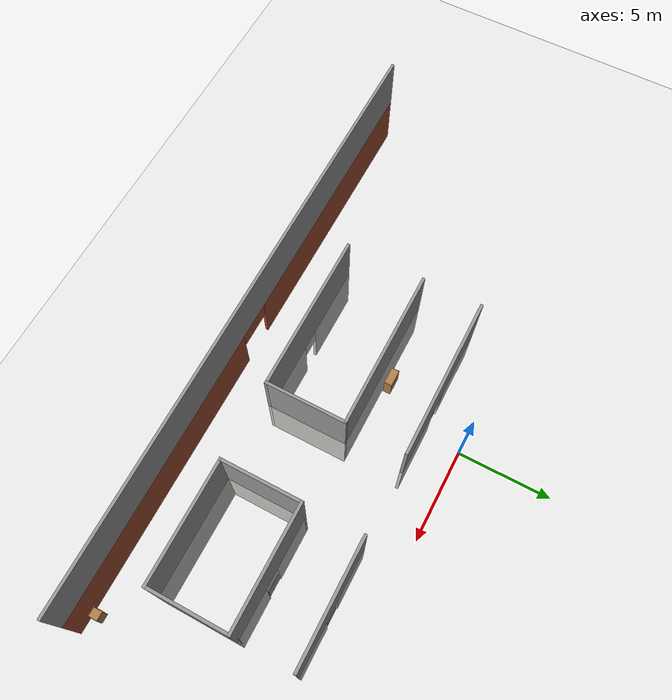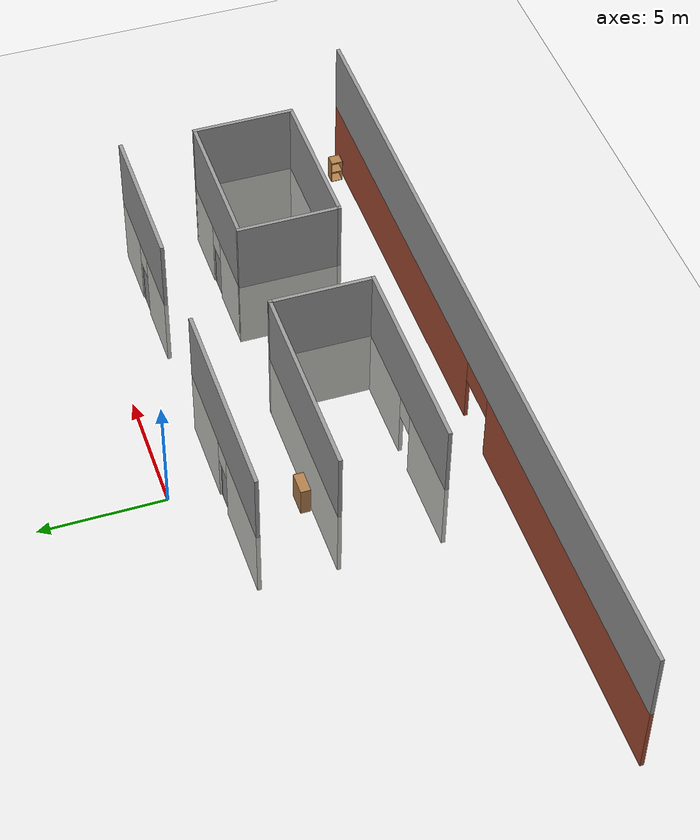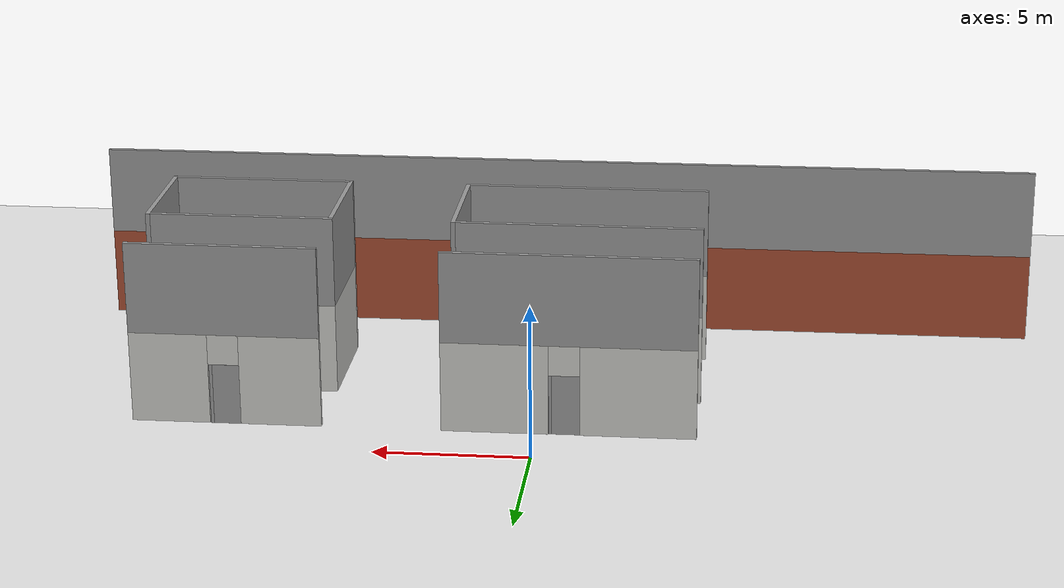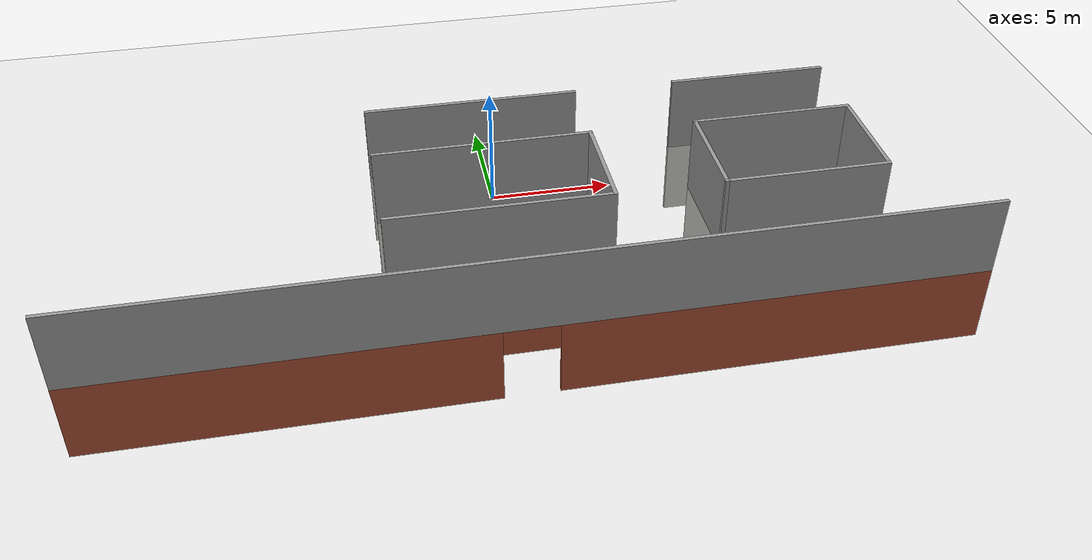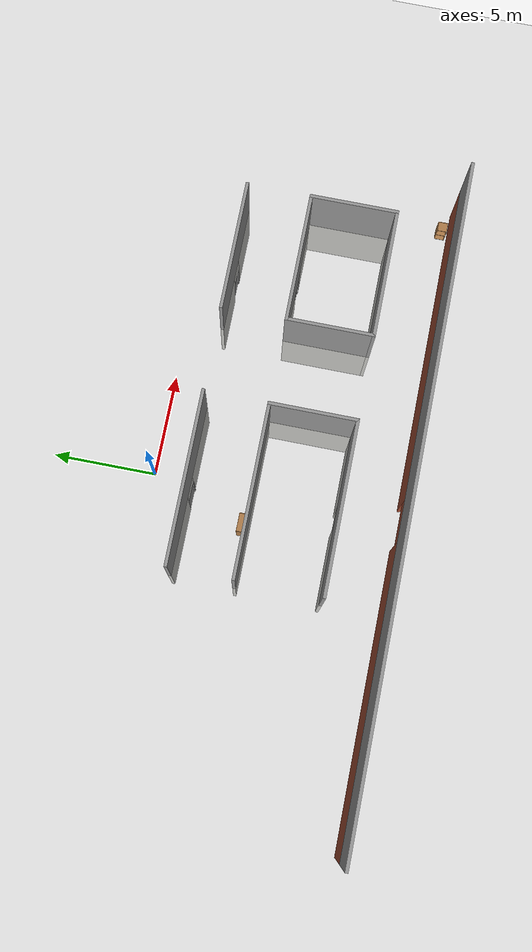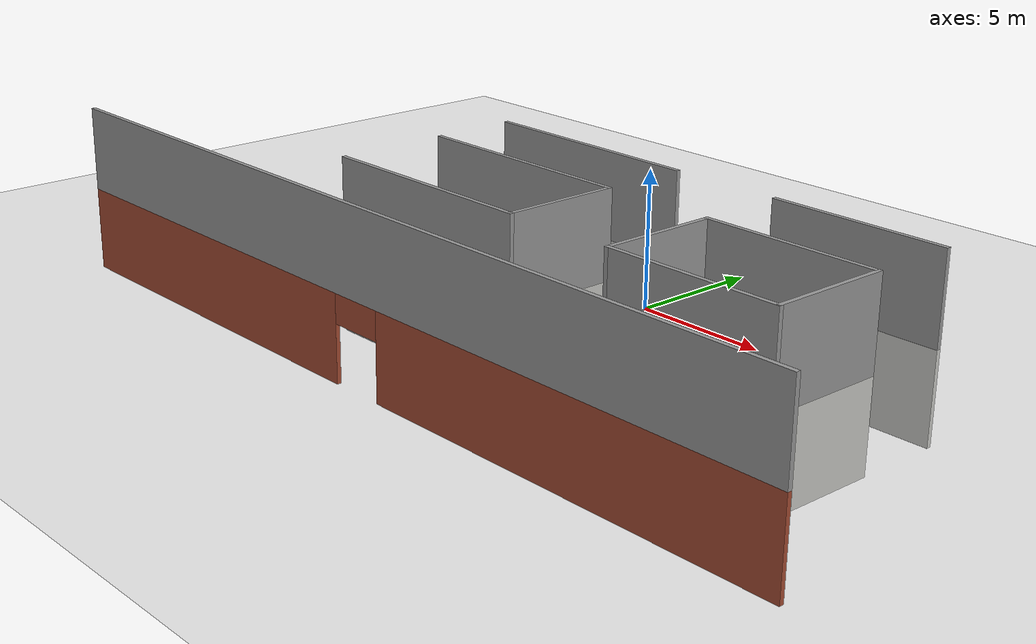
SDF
<sdf version="1.6">
 <world name="default">
  <model name="ground_plane">
   <static>1</static>
   <link name="link">
    <collision name="collision">
     <geometry><plane><normal>0 0 1</normal><size>100 100</size></plane></geometry>
     <surface><friction><ode><mu>100</mu><mu2>50</mu2></ode></friction></surface>
    </collision>
    <visual name="visual">
     <cast_shadows>0</cast_shadows>
     <geometry><plane><normal>0 0 1</normal><size>100 100</size></plane></geometry>
     <material>
      <script><uri>file://media/materials/scripts/gazebo.material</uri><name>Gazebo/White</name></script>
     </material>
    </visual>
   </link>
  </model>
  <model name="test_building">
   <link name="Wall_0">
    <pose>0 -12 0 0 -0 0</pose>
    <visual name="Wall_0_Visual_0">
     <pose>-8.78811 0 1.5 0 -0 0</pose>
     <geometry><box><size>14.5738 0.15 3</size></box></geometry>
     <material>
      <script><uri>file://media/materials/scripts/gazebo.material</uri><name>Gazebo/Bricks</name></script>
      <ambient>1 1 1 1</ambient>
     </material>
     <meta><layer>0</layer></meta>
    </visual>
    <collision name="Wall_0_Collision_0">
     <geometry><box><size>14.5738 0.15 3</size></box></geometry>
     <pose>-8.78811 0 1.5 0 -0 0</pose>
    </collision>
    <visual name="Wall_0_Visual_1">
     <pose>8.28689 0 1.5 0 -0 0</pose>
     <geometry><box><size>15.5762 0.15 3</size></box></geometry>
     <material>
      <script><uri>file://media/materials/scripts/gazebo.material</uri><name>Gazebo/Bricks</name></script>
      <ambient>1 1 1 1</ambient>
     </material>
     <meta><layer>0</layer></meta>
    </visual>
    <collision name="Wall_0_Collision_1">
     <geometry><box><size>15.5762 0.15 3</size></box></geometry>
     <pose>8.28689 0 1.5 0 -0 0</pose>
    </collision>
    <visual name="Wall_0_Visual_2">
     <pose>-0.501223 0 2.5 0 -0 0</pose>
     <geometry><box><size>2 0.15 1</size></box></geometry>
     <material>
      <script><uri>file://media/materials/scripts/gazebo.material</uri><name>Gazebo/Bricks</name></script>
      <ambient>1 1 1 1</ambient>
     </material>
     <meta><layer>0</layer></meta>
    </visual>
    <collision name="Wall_0_Collision_2">
     <geometry><box><size>2 0.15 1</size></box></geometry>
     <pose>-0.501223 0 2.5 0 -0 0</pose>
    </collision>
   </link>
   <link name="Wall_21">
    <pose>-1 -2 0 0 -0 0</pose>
    <visual name="Wall_21_Visual_0">
     <pose>-2.21913 0 1.5 0 -0 0</pose>
     <geometry><box><size>3.71173 0.15 3</size></box></geometry>
     <material>
      <script><uri>file://media/materials/scripts/gazebo.material</uri><name>Gazebo/CeilingTiled</name></script>
      <ambient>0.435294 0.796078 0.67451 1</ambient>
     </material>
     <meta><layer>0</layer></meta>
    </visual>
    <collision name="Wall_21_Collision_0">
     <geometry><box><size>3.71173 0.15 3</size></box></geometry>
     <pose>-2.21913 0 1.5 0 -0 0</pose>
    </collision>
    <visual name="Wall_21_Visual_1">
     <pose>2.35587 0 1.5 0 -0 0</pose>
     <geometry><box><size>3.43827 0.15 3</size></box></geometry>
     <material>
      <script><uri>file://media/materials/scripts/gazebo.material</uri><name>Gazebo/CeilingTiled</name></script>
      <ambient>0.435294 0.796078 0.67451 1</ambient>
     </material>
     <meta><layer>0</layer></meta>
    </visual>
    <collision name="Wall_21_Collision_1">
     <geometry><box><size>3.43827 0.15 3</size></box></geometry>
     <pose>2.35587 0 1.5 0 -0 0</pose>
    </collision>
    <visual name="Wall_21_Visual_2">
     <pose>0.136732 0 2.5 0 -0 0</pose>
     <geometry><box><size>1 0.15 1</size></box></geometry>
     <material>
      <script><uri>file://media/materials/scripts/gazebo.material</uri><name>Gazebo/CeilingTiled</name></script>
      <ambient>0.435294 0.796078 0.67451 1</ambient>
     </material>
     <meta><layer>0</layer></meta>
    </visual>
    <collision name="Wall_21_Collision_2">
     <geometry><box><size>1 0.15 1</size></box></geometry>
     <pose>0.136732 0 2.5 0 -0 0</pose>
    </collision>
   </link>
   <link name="Wall_25">
    <collision name="Wall_25_Collision">
     <geometry><box><size>8.15 0.15 3</size></box></geometry>
     <pose>0 0 1.5 0 -0 0</pose>
    </collision>
    <visual name="Wall_25_Visual">
     <pose>0 0 1.5 0 -0 0</pose>
     <geometry><box><size>8.15 0.15 3</size></box></geometry>
     <material>
      <script><uri>file://media/materials/scripts/gazebo.material</uri><name>Gazebo/CeilingTiled</name></script>
      <ambient>0.435294 0.796078 0.67451 1</ambient>
     </material>
     <meta><layer>0</layer></meta>
    </visual>
    <pose>-1 -5 0 0 -0 0</pose>
   </link>
   <link name="Wall_26">
    <collision name="Wall_26_Collision">
     <geometry><box><size>4.15 0.15 3</size></box></geometry>
     <pose>0 0 1.5 0 -0 0</pose>
    </collision>
    <visual name="Wall_26_Visual">
     <pose>0 0 1.5 0 -0 0</pose>
     <geometry><box><size>4.15 0.15 3</size></box></geometry>
     <material>
      <script><uri>file://media/materials/scripts/gazebo.material</uri><name>Gazebo/CeilingTiled</name></script>
      <ambient>0.435294 0.796078 0.67451 1</ambient>
     </material>
     <meta><layer>0</layer></meta>
    </visual>
    <pose>3 -7 0 0 -0 -1.5708</pose>
   </link>
   <link name="Wall_27">
    <pose>-1 -9 0 0 -0 3.14159</pose>
    <visual name="Wall_27_Visual_0">
     <pose>-2.33575 0 1.5 0 -0 0</pose>
     <geometry><box><size>3.4785 0.15 3</size></box></geometry>
     <material>
      <script><uri>file://media/materials/scripts/gazebo.material</uri><name>Gazebo/CeilingTiled</name></script>
      <ambient>0.435294 0.796078 0.67451 1</ambient>
     </material>
     <meta><layer>0</layer></meta>
    </visual>
    <collision name="Wall_27_Collision_0">
     <geometry><box><size>3.4785 0.15 3</size></box></geometry>
     <pose>-2.33575 0 1.5 0 -0 0</pose>
    </collision>
    <visual name="Wall_27_Visual_1">
     <pose>2.23925 0 1.5 0 -0 0</pose>
     <geometry><box><size>3.6715 0.15 3</size></box></geometry>
     <material>
      <script><uri>file://media/materials/scripts/gazebo.material</uri><name>Gazebo/CeilingTiled</name></script>
      <ambient>0.435294 0.796078 0.67451 1</ambient>
     </material>
     <meta><layer>0</layer></meta>
    </visual>
    <collision name="Wall_27_Collision_1">
     <geometry><box><size>3.6715 0.15 3</size></box></geometry>
     <pose>2.23925 0 1.5 0 -0 0</pose>
    </collision>
    <visual name="Wall_27_Visual_2">
     <pose>-0.096505 0 2.5 0 -0 0</pose>
     <geometry><box><size>1 0.15 1</size></box></geometry>
     <material>
      <script><uri>file://media/materials/scripts/gazebo.material</uri><name>Gazebo/CeilingTiled</name></script>
      <ambient>0.435294 0.796078 0.67451 1</ambient>
     </material>
     <meta><layer>0</layer></meta>
    </visual>
    <collision name="Wall_27_Collision_2">
     <geometry><box><size>1 0.15 1</size></box></geometry>
     <pose>-0.096505 0 2.5 0 -0 0</pose>
    </collision>
   </link>
   <link name="Wall_37">
    <pose>10 -2 0 0 -0 3.14159</pose>
    <visual name="Wall_37_Visual_0">
     <pose>-1.80664 0 1.5 0 -0 0</pose>
     <geometry><box><size>2.53671 0.15 3</size></box></geometry>
     <material>
      <script><uri>file://media/materials/scripts/gazebo.material</uri><name>Gazebo/CeilingTiled</name></script>
      <ambient>1 1 1 1</ambient>
     </material>
     <meta><layer>0</layer></meta>
    </visual>
    <collision name="Wall_37_Collision_0">
     <geometry><box><size>2.53671 0.15 3</size></box></geometry>
     <pose>-1.80664 0 1.5 0 -0 0</pose>
    </collision>
    <visual name="Wall_37_Visual_1">
     <pose>1.76836 0 1.5 0 -0 0</pose>
     <geometry><box><size>2.61329 0.15 3</size></box></geometry>
     <material>
      <script><uri>file://media/materials/scripts/gazebo.material</uri><name>Gazebo/CeilingTiled</name></script>
      <ambient>1 1 1 1</ambient>
     </material>
     <meta><layer>0</layer></meta>
    </visual>
    <collision name="Wall_37_Collision_1">
     <geometry><box><size>2.61329 0.15 3</size></box></geometry>
     <pose>1.76836 0 1.5 0 -0 0</pose>
    </collision>
    <visual name="Wall_37_Visual_2">
     <pose>-0.038288 0 2.5 0 -0 0</pose>
     <geometry><box><size>1 0.15 1</size></box></geometry>
     <material>
      <script><uri>file://media/materials/scripts/gazebo.material</uri><name>Gazebo/CeilingTiled</name></script>
      <ambient>1 1 1 1</ambient>
     </material>
     <meta><layer>0</layer></meta>
    </visual>
    <collision name="Wall_37_Collision_2">
     <geometry><box><size>1 0.15 1</size></box></geometry>
     <pose>-0.038288 0 2.5 0 -0 0</pose>
    </collision>
   </link>
   <link name="Wall_40">
    <pose>10 -5 0 0 -0 0</pose>
    <visual name="Wall_40_Visual_0">
     <pose>-1.74824 0 1.5 0 -0 0</pose>
     <geometry><box><size>2.65352 0.15 3</size></box></geometry>
     <material>
      <script><uri>file://media/materials/scripts/gazebo.material</uri><name>Gazebo/CeilingTiled</name></script>
      <ambient>1 1 1 1</ambient>
     </material>
     <meta><layer>0</layer></meta>
    </visual>
    <collision name="Wall_40_Collision_0">
     <geometry><box><size>2.65352 0.15 3</size></box></geometry>
     <pose>-1.74824 0 1.5 0 -0 0</pose>
    </collision>
    <visual name="Wall_40_Visual_1">
     <pose>1.82676 0 1.5 0 -0 0</pose>
     <geometry><box><size>2.49648 0.15 3</size></box></geometry>
     <material>
      <script><uri>file://media/materials/scripts/gazebo.material</uri><name>Gazebo/CeilingTiled</name></script>
      <ambient>1 1 1 1</ambient>
     </material>
     <meta><layer>0</layer></meta>
    </visual>
    <collision name="Wall_40_Collision_1">
     <geometry><box><size>2.49648 0.15 3</size></box></geometry>
     <pose>1.82676 0 1.5 0 -0 0</pose>
    </collision>
    <visual name="Wall_40_Visual_2">
     <pose>0.078515 0 2.5 0 -0 0</pose>
     <geometry><box><size>1 0.15 1</size></box></geometry>
     <material>
      <script><uri>file://media/materials/scripts/gazebo.material</uri><name>Gazebo/CeilingTiled</name></script>
      <ambient>1 1 1 1</ambient>
     </material>
     <meta><layer>0</layer></meta>
    </visual>
    <collision name="Wall_40_Collision_2">
     <geometry><box><size>1 0.15 1</size></box></geometry>
     <pose>0.078515 0 2.5 0 -0 0</pose>
    </collision>
   </link>
   <link name="Wall_41">
    <collision name="Wall_41_Collision">
     <geometry><box><size>4.15 0.15 3</size></box></geometry>
     <pose>0 0 1.5 0 -0 0</pose>
    </collision>
    <visual name="Wall_41_Visual">
     <pose>0 0 1.5 0 -0 0</pose>
     <geometry><box><size>4.15 0.15 3</size></box></geometry>
     <material>
      <script><uri>file://media/materials/scripts/gazebo.material</uri><name>Gazebo/CeilingTiled</name></script>
      <ambient>1 1 1 1</ambient>
     </material>
     <meta><layer>0</layer></meta>
    </visual>
    <pose>13 -7 0 0 -0 -1.5708</pose>
   </link>
   <link name="Wall_42">
    <collision name="Wall_42_Collision">
     <geometry><box><size>6.15 0.15 3</size></box></geometry>
     <pose>0 0 1.5 0 -0 0</pose>
    </collision>
    <visual name="Wall_42_Visual">
     <pose>0 0 1.5 0 -0 0</pose>
     <geometry><box><size>6.15 0.15 3</size></box></geometry>
     <material>
      <script><uri>file://media/materials/scripts/gazebo.material</uri><name>Gazebo/CeilingTiled</name></script>
      <ambient>1 1 1 1</ambient>
     </material>
     <meta><layer>0</layer></meta>
    </visual>
    <pose>10 -9 0 0 -0 3.14159</pose>
   </link>
   <link name="Wall_43">
    <collision name="Wall_43_Collision">
     <geometry><box><size>4.15 0.15 3</size></box></geometry>
     <pose>0 0 1.5 0 -0 0</pose>
    </collision>
    <visual name="Wall_43_Visual">
     <pose>0 0 1.5 0 -0 0</pose>
     <geometry><box><size>4.15 0.15 3</size></box></geometry>
     <material>
      <script><uri>file://media/materials/scripts/gazebo.material</uri><name>Gazebo/CeilingTiled</name></script>
      <ambient>1 1 1 1</ambient>
     </material>
     <meta><layer>0</layer></meta>
    </visual>
    <pose>7 -7 0 0 -0 1.5708</pose>
   </link>
   <link name="Wall_47">
    <collision name="Wall_47_Collision">
     <geometry><box><size>32.15 0.15 3</size></box></geometry>
     <pose>0 0 1.5 0 -0 0</pose>
    </collision>
    <visual name="Wall_47_Visual">
     <pose>0 0 1.5 0 -0 0</pose>
     <geometry><box><size>32.15 0.15 3</size></box></geometry>
     <material>
      <script><uri>file://media/materials/scripts/gazebo.material</uri><name>Gazebo/Grey</name></script>
      <ambient>1 1 1 1</ambient>
     </material>
     <meta><layer>1</layer></meta>
    </visual>
    <pose>0 -12 3 0 -0 0</pose>
   </link>
   <link name="Wall_63">
    <collision name="Wall_63_Collision">
     <geometry><box><size>8.15 0.15 3</size></box></geometry>
     <pose>0 0 1.5 0 -0 0</pose>
    </collision>
    <visual name="Wall_63_Visual">
     <pose>0 0 1.5 0 -0 0</pose>
     <geometry><box><size>8.15 0.15 3</size></box></geometry>
     <material>
      <script><uri>file://media/materials/scripts/gazebo.material</uri><name>Gazebo/Grey</name></script>
      <ambient>1 1 1 1</ambient>
     </material>
     <meta><layer>1</layer></meta>
    </visual>
    <pose>-1 -2 3 0 -0 0</pose>
   </link>
   <link name="Wall_66">
    <collision name="Wall_66_Collision">
     <geometry><box><size>8.15 0.15 3</size></box></geometry>
     <pose>0 0 1.5 0 -0 0</pose>
    </collision>
    <visual name="Wall_66_Visual">
     <pose>0 0 1.5 0 -0 0</pose>
     <geometry><box><size>8.15 0.15 3</size></box></geometry>
     <material>
      <script><uri>file://media/materials/scripts/gazebo.material</uri><name>Gazebo/Grey</name></script>
      <ambient>1 1 1 1</ambient>
     </material>
     <meta><layer>1</layer></meta>
    </visual>
    <pose>-1 -5 3 0 -0 0</pose>
   </link>
   <link name="Wall_67">
    <collision name="Wall_67_Collision">
     <geometry><box><size>4.15 0.15 3</size></box></geometry>
     <pose>0 0 1.5 0 -0 0</pose>
    </collision>
    <visual name="Wall_67_Visual">
     <pose>0 0 1.5 0 -0 0</pose>
     <geometry><box><size>4.15 0.15 3</size></box></geometry>
     <material>
      <script><uri>file://media/materials/scripts/gazebo.material</uri><name>Gazebo/Grey</name></script>
      <ambient>1 1 1 1</ambient>
     </material>
     <meta><layer>1</layer></meta>
    </visual>
    <pose>3 -7 3 0 -0 -1.5708</pose>
   </link>
   <link name="Wall_68">
    <collision name="Wall_68_Collision">
     <geometry><box><size>8.15 0.15 3</size></box></geometry>
     <pose>0 0 1.5 0 -0 0</pose>
    </collision>
    <visual name="Wall_68_Visual">
     <pose>0 0 1.5 0 -0 0</pose>
     <geometry><box><size>8.15 0.15 3</size></box></geometry>
     <material>
      <script><uri>file://media/materials/scripts/gazebo.material</uri><name>Gazebo/Grey</name></script>
      <ambient>1 1 1 1</ambient>
     </material>
     <meta><layer>1</layer></meta>
    </visual>
    <pose>-1 -9 3 0 -0 3.14159</pose>
   </link>
   <link name="Wall_76">
    <collision name="Wall_76_Collision">
     <geometry><box><size>6.15 0.15 3</size></box></geometry>
     <pose>0 0 1.5 0 -0 0</pose>
    </collision>
    <visual name="Wall_76_Visual">
     <pose>0 0 1.5 0 -0 0</pose>
     <geometry><box><size>6.15 0.15 3</size></box></geometry>
     <material>
      <script><uri>file://media/materials/scripts/gazebo.material</uri><name>Gazebo/Grey</name></script>
      <ambient>1 1 1 1</ambient>
     </material>
     <meta><layer>1</layer></meta>
    </visual>
    <pose>10 -2 3 0 -0 3.14159</pose>
   </link>
   <link name="Wall_78">
    <collision name="Wall_78_Collision">
     <geometry><box><size>6.15 0.15 3</size></box></geometry>
     <pose>0 0 1.5 0 -0 0</pose>
    </collision>
    <visual name="Wall_78_Visual">
     <pose>0 0 1.5 0 -0 0</pose>
     <geometry><box><size>6.15 0.15 3</size></box></geometry>
     <material>
      <script><uri>file://media/materials/scripts/gazebo.material</uri><name>Gazebo/Grey</name></script>
      <ambient>1 1 1 1</ambient>
     </material>
     <meta><layer>1</layer></meta>
    </visual>
    <pose>10 -5 3 0 -0 0</pose>
   </link>
   <link name="Wall_79">
    <collision name="Wall_79_Collision">
     <geometry><box><size>4.15 0.15 3</size></box></geometry>
     <pose>0 0 1.5 0 -0 0</pose>
    </collision>
    <visual name="Wall_79_Visual">
     <pose>0 0 1.5 0 -0 0</pose>
     <geometry><box><size>4.15 0.15 3</size></box></geometry>
     <material>
      <script><uri>file://media/materials/scripts/gazebo.material</uri><name>Gazebo/Grey</name></script>
      <ambient>1 1 1 1</ambient>
     </material>
     <meta><layer>1</layer></meta>
    </visual>
    <pose>13 -7 3 0 -0 -1.5708</pose>
   </link>
   <link name="Wall_80">
    <collision name="Wall_80_Collision">
     <geometry><box><size>6.15 0.15 3</size></box></geometry>
     <pose>0 0 1.5 0 -0 0</pose>
    </collision>
    <visual name="Wall_80_Visual">
     <pose>0 0 1.5 0 -0 0</pose>
     <geometry><box><size>6.15 0.15 3</size></box></geometry>
     <material>
      <script><uri>file://media/materials/scripts/gazebo.material</uri><name>Gazebo/Grey</name></script>
      <ambient>1 1 1 1</ambient>
     </material>
     <meta><layer>1</layer></meta>
    </visual>
    <pose>10 -9 3 0 -0 3.14159</pose>
   </link>
   <link name="Wall_81">
    <collision name="Wall_81_Collision">
     <geometry><box><size>4.15 0.15 3</size></box></geometry>
     <pose>0 0 1.5 0 -0 0</pose>
    </collision>
    <visual name="Wall_81_Visual">
     <pose>0 0 1.5 0 -0 0</pose>
     <geometry><box><size>4.15 0.15 3</size></box></geometry>
     <material>
      <script><uri>file://media/materials/scripts/gazebo.material</uri><name>Gazebo/Grey</name></script>
      <ambient>1 1 1 1</ambient>
     </material>
     <meta><layer>1</layer></meta>
    </visual>
    <pose>7 -7 3 0 -0 1.5708</pose>
   </link>
   <static>1</static>
  </model>
  <model name="door3">
   <model name="door2">
    <model name="door">
     <link name="link_0">
      <inertial>
       <mass>1</mass>
       <inertia>
        <ixx>0.166667</ixx>
        <ixy>0</ixy>
        <ixz>0</ixz>
        <iyy>0.166667</iyy>
        <iyz>0</iyz>
        <izz>0.166667</izz>
       </inertia>
      </inertial>
      <pose>0.77106 0.045416 0.5 0 -0 0</pose>
      <visual name="visual">
       <geometry><box><size>0.9 0.05 2</size></box></geometry>
       <material>
        <lighting>1</lighting>
        <script><uri>file://media/materials/scripts/gazebo.material</uri><name>Gazebo/Grey</name></script>
        <shader type="pixel"><normal_map>__default__</normal_map></shader>
        <ambient>0.3 0.3 0.3 1</ambient>
        <diffuse>0.7 0.7 0.7 1</diffuse>
        <specular>0.01 0.01 0.01 1</specular>
        <emissive>0 0 0 1</emissive>
       </material>
      </visual>
      <collision name="collision">
       <geometry><box><size>0.9 0.1 2</size></box></geometry>
       <surface>
        <friction>
         <ode><mu>1</mu><mu2>1</mu2><fdir1>0 0 0</fdir1><slip1>0</slip1><slip2>0</slip2></ode>
         <torsional>
          <coefficient>1</coefficient>
          <patch_radius>0</patch_radius>
          <surface_radius>0</surface_radius>
          <use_patch_radius>1</use_patch_radius>
          <ode><slip>0</slip></ode>
         </torsional>
        </friction>
        <bounce><restitution_coefficient>0</restitution_coefficient><threshold>1e+06</threshold></bounce>
        <contact>
         <collide_without_contact>0</collide_without_contact>
         <collide_without_contact_bitmask>1</collide_without_contact_bitmask>
         <collide_bitmask>1</collide_bitmask>
         <ode>
          <soft_cfm>0</soft_cfm>
          <soft_erp>0.2</soft_erp>
          <kp>1e+13</kp>
          <kd>1</kd>
          <max_vel>0.01</max_vel>
          <min_depth>0</min_depth>
         </ode>
         <bullet>
          <split_impulse>1</split_impulse>
          <split_impulse_penetration_threshold>-0.01</split_impulse_penetration_threshold>
          <soft_cfm>0</soft_cfm>
          <soft_erp>0.2</soft_erp>
          <kp>1e+13</kp>
          <kd>1</kd>
         </bullet>
        </contact>
       </surface>
      </collision>
     </link>
     <link name="link_1">
      <inertial>
       <mass>10</mass>
       <inertia>
        <ixx>3.34167</ixx>
        <ixy>0</ixy>
        <ixz>0</ixz>
        <iyy>3.34167</iyy>
        <iyz>0</iyz>
        <izz>0.0166667</izz>
       </inertia>
      </inertial>
      <pose>1.27106 0.020416 0.5 0 -0 0</pose>
      <visual name="visual">
       <geometry><box><size>0.1 0.1 2</size></box></geometry>
       <material>
        <lighting>1</lighting>
        <script><uri>file://media/materials/scripts/gazebo.material</uri><name>Gazebo/Grey</name></script>
        <shader type="pixel"><normal_map>__default__</normal_map></shader>
        <ambient>0.3 0.3 0.3 1</ambient>
        <diffuse>0.7 0.7 0.7 1</diffuse>
        <specular>0.01 0.01 0.01 1</specular>
        <emissive>0 0 0 1</emissive>
       </material>
      </visual>
      <collision name="collision">
       <geometry><box><size>0.1 0.1 2</size></box></geometry>
       <surface>
        <friction>
         <ode><mu>1</mu><mu2>1</mu2><fdir1>0 0 0</fdir1><slip1>0</slip1><slip2>0</slip2></ode>
         <torsional>
          <coefficient>1</coefficient>
          <patch_radius>0</patch_radius>
          <surface_radius>0</surface_radius>
          <use_patch_radius>1</use_patch_radius>
          <ode><slip>0</slip></ode>
         </torsional>
        </friction>
        <bounce><restitution_coefficient>0</restitution_coefficient><threshold>1e+06</threshold></bounce>
        <contact>
         <collide_without_contact>0</collide_without_contact>
         <collide_without_contact_bitmask>1</collide_without_contact_bitmask>
         <collide_bitmask>1</collide_bitmask>
         <ode>
          <soft_cfm>0</soft_cfm>
          <soft_erp>0.2</soft_erp>
          <kp>1e+13</kp>
          <kd>1</kd>
          <max_vel>0.01</max_vel>
          <min_depth>0</min_depth>
         </ode>
         <bullet>
          <split_impulse>1</split_impulse>
          <split_impulse_penetration_threshold>-0.01</split_impulse_penetration_threshold>
          <soft_cfm>0</soft_cfm>
          <soft_erp>0.2</soft_erp>
          <kp>1e+13</kp>
          <kd>1</kd>
         </bullet>
        </contact>
       </surface>
      </collision>
     </link>
     <joint name="link_1_JOINT_0" type="revolute">
      <parent>link_1</parent>
      <child>link_0</child>
      <axis>
       <xyz>0 0 1</xyz>
       <use_parent_model_frame>0</use_parent_model_frame>
       <limit>
        <lower>-1.79769e+308</lower>
        <upper>1.79769e+308</upper>
        <effort>-1</effort>
        <velocity>-1</velocity>
       </limit>
       <dynamics>
        <spring_reference>0</spring_reference>
        <spring_stiffness>0</spring_stiffness>
        <damping>0</damping>
       </dynamics>
      </axis>
      <physics>
       <ode><limit><cfm>0</cfm><erp>0.2</erp></limit><suspension><cfm>0</cfm><erp>0.2</erp></suspension></ode>
      </physics>
     </joint>
     <static>0</static>
     <pose>0 4e-06 0 0 -0 0</pose>
    </model>
    <joint name="link_0_JOINT_1" type="fixed">
     <parent>door::link_0</parent>
     <child>door::link_1</child>
     <physics>
      <ode><limit><cfm>0</cfm><erp>0.2</erp></limit><suspension><cfm>0</cfm><erp>0.2</erp></suspension></ode>
     </physics>
    </joint>
    <static>0</static>
    <pose>5e-06 -0 0.47855 0 -0 0</pose>
   </model>
   <joint name="link_1_JOINT_2" type="fixed">
    <parent>door2::door::link_1</parent>
    <child>door2::door::link_0</child>
    <physics>
     <ode><limit><cfm>0</cfm><erp>0.2</erp></limit><suspension><cfm>0</cfm><erp>0.2</erp></suspension></ode>
    </physics>
   </joint>
   <static>0</static>
   <pose>-1.68002 -2.07413 0 0 -0 0</pose>
  </model>
  <model name="door3_0">
   <model name="door2">
    <model name="door">
     <link name="link_0">
      <inertial>
       <mass>1</mass>
       <inertia>
        <ixx>0.166667</ixx>
        <ixy>0</ixy>
        <ixz>0</ixz>
        <iyy>0.166667</iyy>
        <iyz>0</iyz>
        <izz>0.166667</izz>
       </inertia>
      </inertial>
      <pose>0.77106 0.045416 0.5 0 -0 0</pose>
      <visual name="visual">
       <geometry><box><size>0.9 0.05 2</size></box></geometry>
       <material>
        <lighting>1</lighting>
        <script><uri>file://media/materials/scripts/gazebo.material</uri><name>Gazebo/Grey</name></script>
        <shader type="pixel"><normal_map>__default__</normal_map></shader>
        <ambient>0.3 0.3 0.3 1</ambient>
        <diffuse>0.7 0.7 0.7 1</diffuse>
        <specular>0.01 0.01 0.01 1</specular>
        <emissive>0 0 0 1</emissive>
       </material>
      </visual>
      <collision name="collision">
       <geometry><box><size>0.9 0.1 2</size></box></geometry>
       <surface>
        <friction>
         <ode><mu>1</mu><mu2>1</mu2><fdir1>0 0 0</fdir1><slip1>0</slip1><slip2>0</slip2></ode>
         <torsional>
          <coefficient>1</coefficient>
          <patch_radius>0</patch_radius>
          <surface_radius>0</surface_radius>
          <use_patch_radius>1</use_patch_radius>
          <ode><slip>0</slip></ode>
         </torsional>
        </friction>
        <bounce><restitution_coefficient>0</restitution_coefficient><threshold>1e+06</threshold></bounce>
        <contact>
         <collide_without_contact>0</collide_without_contact>
         <collide_without_contact_bitmask>1</collide_without_contact_bitmask>
         <collide_bitmask>1</collide_bitmask>
         <ode>
          <soft_cfm>0</soft_cfm>
          <soft_erp>0.2</soft_erp>
          <kp>1e+13</kp>
          <kd>1</kd>
          <max_vel>0.01</max_vel>
          <min_depth>0</min_depth>
         </ode>
         <bullet>
          <split_impulse>1</split_impulse>
          <split_impulse_penetration_threshold>-0.01</split_impulse_penetration_threshold>
          <soft_cfm>0</soft_cfm>
          <soft_erp>0.2</soft_erp>
          <kp>1e+13</kp>
          <kd>1</kd>
         </bullet>
        </contact>
       </surface>
      </collision>
     </link>
     <link name="link_1">
      <inertial>
       <mass>10</mass>
       <inertia>
        <ixx>3.34167</ixx>
        <ixy>0</ixy>
        <ixz>0</ixz>
        <iyy>3.34167</iyy>
        <iyz>0</iyz>
        <izz>0.0166667</izz>
       </inertia>
      </inertial>
      <pose>1.27106 0.020416 0.5 0 -0 0</pose>
      <visual name="visual">
       <geometry><box><size>0.1 0.1 2</size></box></geometry>
       <material>
        <lighting>1</lighting>
        <script><uri>file://media/materials/scripts/gazebo.material</uri><name>Gazebo/Grey</name></script>
        <shader type="pixel"><normal_map>__default__</normal_map></shader>
        <ambient>0.3 0.3 0.3 1</ambient>
        <diffuse>0.7 0.7 0.7 1</diffuse>
        <specular>0.01 0.01 0.01 1</specular>
        <emissive>0 0 0 1</emissive>
       </material>
      </visual>
      <collision name="collision">
       <geometry><box><size>0.1 0.1 2</size></box></geometry>
       <surface>
        <friction>
         <ode><mu>1</mu><mu2>1</mu2><fdir1>0 0 0</fdir1><slip1>0</slip1><slip2>0</slip2></ode>
         <torsional>
          <coefficient>1</coefficient>
          <patch_radius>0</patch_radius>
          <surface_radius>0</surface_radius>
          <use_patch_radius>1</use_patch_radius>
          <ode><slip>0</slip></ode>
         </torsional>
        </friction>
        <bounce><restitution_coefficient>0</restitution_coefficient><threshold>1e+06</threshold></bounce>
        <contact>
         <collide_without_contact>0</collide_without_contact>
         <collide_without_contact_bitmask>1</collide_without_contact_bitmask>
         <collide_bitmask>1</collide_bitmask>
         <ode>
          <soft_cfm>0</soft_cfm>
          <soft_erp>0.2</soft_erp>
          <kp>1e+13</kp>
          <kd>1</kd>
          <max_vel>0.01</max_vel>
          <min_depth>0</min_depth>
         </ode>
         <bullet>
          <split_impulse>1</split_impulse>
          <split_impulse_penetration_threshold>-0.01</split_impulse_penetration_threshold>
          <soft_cfm>0</soft_cfm>
          <soft_erp>0.2</soft_erp>
          <kp>1e+13</kp>
          <kd>1</kd>
         </bullet>
        </contact>
       </surface>
      </collision>
     </link>
     <joint name="link_1_JOINT_0" type="revolute">
      <parent>link_1</parent>
      <child>link_0</child>
      <axis>
       <xyz>0 0 1</xyz>
       <use_parent_model_frame>0</use_parent_model_frame>
       <limit>
        <lower>-1.79769e+308</lower>
        <upper>1.79769e+308</upper>
        <effort>-1</effort>
        <velocity>-1</velocity>
       </limit>
       <dynamics>
        <spring_reference>0</spring_reference>
        <spring_stiffness>0</spring_stiffness>
        <damping>0</damping>
       </dynamics>
      </axis>
      <physics>
       <ode><limit><cfm>0</cfm><erp>0.2</erp></limit><suspension><cfm>0</cfm><erp>0.2</erp></suspension></ode>
      </physics>
     </joint>
     <static>0</static>
     <pose>0 4e-06 0 0 -0 0</pose>
    </model>
    <joint name="link_0_JOINT_1" type="fixed">
     <parent>door::link_0</parent>
     <child>door::link_1</child>
     <physics>
      <ode><limit><cfm>0</cfm><erp>0.2</erp></limit><suspension><cfm>0</cfm><erp>0.2</erp></suspension></ode>
     </physics>
    </joint>
    <static>0</static>
    <pose>5e-06 -0 0.47855 0 -0 0</pose>
   </model>
   <joint name="link_1_JOINT_2" type="fixed">
    <parent>door2::door::link_1</parent>
    <child>door2::door::link_0</child>
    <physics>
     <ode><limit><cfm>0</cfm><erp>0.2</erp></limit><suspension><cfm>0</cfm><erp>0.2</erp></suspension></ode>
    </physics>
   </joint>
   <static>0</static>
   <pose>9.19778 -2.04279 0 0 -0 0</pose>
  </model>
  <model name="door3_2">
   <model name="door2">
    <model name="door">
     <link name="link_0">
      <inertial>
       <mass>1</mass>
       <inertia>
        <ixx>0.166667</ixx>
        <ixy>0</ixy>
        <ixz>0</ixz>
        <iyy>0.166667</iyy>
        <iyz>0</iyz>
        <izz>0.166667</izz>
       </inertia>
      </inertial>
      <pose>0.77106 0.045416 0.5 0 -0 0</pose>
      <visual name="visual">
       <geometry><box><size>0.9 0.05 2</size></box></geometry>
       <material>
        <lighting>1</lighting>
        <script><uri>file://media/materials/scripts/gazebo.material</uri><name>Gazebo/Grey</name></script>
        <shader type="pixel"><normal_map>__default__</normal_map></shader>
        <ambient>0.3 0.3 0.3 1</ambient>
        <diffuse>0.7 0.7 0.7 1</diffuse>
        <specular>0.01 0.01 0.01 1</specular>
        <emissive>0 0 0 1</emissive>
       </material>
      </visual>
      <collision name="collision">
       <geometry><box><size>0.9 0.1 2</size></box></geometry>
       <surface>
        <friction>
         <ode><mu>1</mu><mu2>1</mu2><fdir1>0 0 0</fdir1><slip1>0</slip1><slip2>0</slip2></ode>
         <torsional>
          <coefficient>1</coefficient>
          <patch_radius>0</patch_radius>
          <surface_radius>0</surface_radius>
          <use_patch_radius>1</use_patch_radius>
          <ode><slip>0</slip></ode>
         </torsional>
        </friction>
        <bounce><restitution_coefficient>0</restitution_coefficient><threshold>1e+06</threshold></bounce>
        <contact>
         <collide_without_contact>0</collide_without_contact>
         <collide_without_contact_bitmask>1</collide_without_contact_bitmask>
         <collide_bitmask>1</collide_bitmask>
         <ode>
          <soft_cfm>0</soft_cfm>
          <soft_erp>0.2</soft_erp>
          <kp>1e+13</kp>
          <kd>1</kd>
          <max_vel>0.01</max_vel>
          <min_depth>0</min_depth>
         </ode>
         <bullet>
          <split_impulse>1</split_impulse>
          <split_impulse_penetration_threshold>-0.01</split_impulse_penetration_threshold>
          <soft_cfm>0</soft_cfm>
          <soft_erp>0.2</soft_erp>
          <kp>1e+13</kp>
          <kd>1</kd>
         </bullet>
        </contact>
       </surface>
      </collision>
     </link>
     <link name="link_1">
      <inertial>
       <mass>10</mass>
       <inertia>
        <ixx>3.34167</ixx>
        <ixy>0</ixy>
        <ixz>0</ixz>
        <iyy>3.34167</iyy>
        <iyz>0</iyz>
        <izz>0.0166667</izz>
       </inertia>
      </inertial>
      <pose>1.27106 0.020416 0.5 0 -0 0</pose>
      <visual name="visual">
       <geometry><box><size>0.1 0.1 2</size></box></geometry>
       <material>
        <lighting>1</lighting>
        <script><uri>file://media/materials/scripts/gazebo.material</uri><name>Gazebo/Grey</name></script>
        <shader type="pixel"><normal_map>__default__</normal_map></shader>
        <ambient>0.3 0.3 0.3 1</ambient>
        <diffuse>0.7 0.7 0.7 1</diffuse>
        <specular>0.01 0.01 0.01 1</specular>
        <emissive>0 0 0 1</emissive>
       </material>
      </visual>
      <collision name="collision">
       <geometry><box><size>0.1 0.1 2</size></box></geometry>
       <surface>
        <friction>
         <ode><mu>1</mu><mu2>1</mu2><fdir1>0 0 0</fdir1><slip1>0</slip1><slip2>0</slip2></ode>
         <torsional>
          <coefficient>1</coefficient>
          <patch_radius>0</patch_radius>
          <surface_radius>0</surface_radius>
          <use_patch_radius>1</use_patch_radius>
          <ode><slip>0</slip></ode>
         </torsional>
        </friction>
        <bounce><restitution_coefficient>0</restitution_coefficient><threshold>1e+06</threshold></bounce>
        <contact>
         <collide_without_contact>0</collide_without_contact>
         <collide_without_contact_bitmask>1</collide_without_contact_bitmask>
         <collide_bitmask>1</collide_bitmask>
         <ode>
          <soft_cfm>0</soft_cfm>
          <soft_erp>0.2</soft_erp>
          <kp>1e+13</kp>
          <kd>1</kd>
          <max_vel>0.01</max_vel>
          <min_depth>0</min_depth>
         </ode>
         <bullet>
          <split_impulse>1</split_impulse>
          <split_impulse_penetration_threshold>-0.01</split_impulse_penetration_threshold>
          <soft_cfm>0</soft_cfm>
          <soft_erp>0.2</soft_erp>
          <kp>1e+13</kp>
          <kd>1</kd>
         </bullet>
        </contact>
       </surface>
      </collision>
     </link>
     <joint name="link_1_JOINT_0" type="revolute">
      <parent>link_1</parent>
      <child>link_0</child>
      <axis>
       <xyz>0 0 1</xyz>
       <use_parent_model_frame>0</use_parent_model_frame>
       <limit>
        <lower>-1.79769e+308</lower>
        <upper>1.79769e+308</upper>
        <effort>-1</effort>
        <velocity>-1</velocity>
       </limit>
       <dynamics>
        <spring_reference>0</spring_reference>
        <spring_stiffness>0</spring_stiffness>
        <damping>0</damping>
       </dynamics>
      </axis>
      <physics>
       <ode><limit><cfm>0</cfm><erp>0.2</erp></limit><suspension><cfm>0</cfm><erp>0.2</erp></suspension></ode>
      </physics>
     </joint>
     <static>0</static>
     <pose>0 4e-06 0 0 -0 0</pose>
    </model>
    <joint name="link_0_JOINT_1" type="fixed">
     <parent>door::link_0</parent>
     <child>door::link_1</child>
     <physics>
      <ode><limit><cfm>0</cfm><erp>0.2</erp></limit><suspension><cfm>0</cfm><erp>0.2</erp></suspension></ode>
     </physics>
    </joint>
    <static>0</static>
    <pose>5e-06 -0 0.47855 0 -0 0</pose>
   </model>
   <joint name="link_1_JOINT_2" type="fixed">
    <parent>door2::door::link_1</parent>
    <child>door2::door::link_0</child>
    <physics>
     <ode><limit><cfm>0</cfm><erp>0.2</erp></limit><suspension><cfm>0</cfm><erp>0.2</erp></suspension></ode>
    </physics>
   </joint>
   <static>0</static>
   <pose>9.26639 -5.04698 0 0 -0 0</pose>
  </model>
  <model name="bookshelf_1">
   <static>1</static>
   <link name="link">
    <inertial><mass>1</mass></inertial>
    <collision name="back">
     <pose>0 0.005 0.6 0 -0 0</pose>
     <geometry><box><size>0.9 0.01 1.2</size></box></geometry>
    </collision>
    <visual name="visual1">
     <pose>0 0.005 0.6 0 -0 0</pose>
     <geometry><box><size>0.9 0.01 1.2</size></box></geometry>
     <material>
      <script><uri>file://media/materials/scripts/gazebo.material</uri><name>Gazebo/Wood</name></script>
     </material>
    </visual>
    <collision name="left_side">
     <pose>0.45 -0.195 0.6 0 -0 0</pose>
     <geometry><box><size>0.02 0.4 1.2</size></box></geometry>
    </collision>
    <visual name="visual2">
     <pose>0.45 -0.195 0.6 0 -0 0</pose>
     <geometry><box><size>0.02 0.4 1.2</size></box></geometry>
     <material>
      <script><uri>file://media/materials/scripts/gazebo.material</uri><name>Gazebo/Wood</name></script>
     </material>
    </visual>
    <collision name="right_side">
     <pose>-0.45 -0.195 0.6 0 -0 0</pose>
     <geometry><box><size>0.02 0.4 1.2</size></box></geometry>
    </collision>
    <visual name="visual3">
     <pose>-0.45 -0.195 0.6 0 -0 0</pose>
     <geometry><box><size>0.02 0.4 1.2</size></box></geometry>
     <material>
      <script><uri>file://media/materials/scripts/gazebo.material</uri><name>Gazebo/Wood</name></script>
     </material>
    </visual>
    <collision name="bottom">
     <pose>0 -0.195 0.03 0 -0 0</pose>
     <geometry><box><size>0.88 0.4 0.06</size></box></geometry>
    </collision>
    <visual name="visual4">
     <pose>0 -0.195 0.03 0 -0 0</pose>
     <geometry><box><size>0.88 0.4 0.06</size></box></geometry>
     <material>
      <script><uri>file://media/materials/scripts/gazebo.material</uri><name>Gazebo/Wood</name></script>
     </material>
    </visual>
    <collision name="top">
     <pose>0 -0.195 1.19 0 -0 0</pose>
     <geometry><box><size>0.88 0.4 0.02</size></box></geometry>
    </collision>
    <visual name="visual5">
     <pose>0 -0.195 1.19 0 -0 0</pose>
     <geometry><box><size>0.88 0.4 0.02</size></box></geometry>
     <material>
      <script><uri>file://media/materials/scripts/gazebo.material</uri><name>Gazebo/Wood</name></script>
     </material>
    </visual>
    <collision name="low_shelf">
     <pose>0 -0.195 0.43 0 -0 0</pose>
     <geometry><box><size>0.88 0.4 0.02</size></box></geometry>
    </collision>
    <visual name="visual6">
     <pose>0 -0.195 0.43 0 -0 0</pose>
     <geometry><box><size>0.88 0.4 0.02</size></box></geometry>
     <material>
      <script><uri>file://media/materials/scripts/gazebo.material</uri><name>Gazebo/Wood</name></script>
     </material>
    </visual>
    <collision name="high_shelf">
     <pose>0 -0.195 0.8 0 -0 0</pose>
     <geometry><box><size>0.88 0.4 0.02</size></box></geometry>
    </collision>
    <visual name="visual7">
     <pose>0 -0.195 0.8 0 -0 0</pose>
     <geometry><box><size>0.88 0.4 0.02</size></box></geometry>
     <material>
      <script><uri>file://media/materials/scripts/gazebo.material</uri><name>Gazebo/Wood</name></script>
     </material>
    </visual>
   </link>
   <pose>-1.7122 -4.49023 0 0 -0 0</pose>
  </model>
  <model name="cabinet_0">
   <static>1</static>
   <link name="cabinet_bottom_plate">
    <inertial>
     <pose>0 0 -1 0 -0 0</pose>
     <inertia><ixx>2.05</ixx><ixy>0</ixy><ixz>0</ixz><iyy>2.05</iyy><iyz>0</iyz><izz>2.05</izz></inertia>
     <mass>25</mass>
    </inertial>
    <collision name="cabinet_bottom_plate_geom">
     <pose>0 0 0.01 0 -0 0</pose>
     <geometry><box><size>0.45 0.45 0.02</size></box></geometry>
    </collision>
    <visual name="cabinet_bottom_plate_geom_visual">
     <pose>0 0 0.01 0 -0 0</pose>
     <geometry><box><size>0.45 0.45 0.02</size></box></geometry>
     <material>
      <script><uri>file://media/materials/scripts/gazebo.material</uri><name>Gazebo/Wood</name></script>
     </material>
    </visual>
    <collision name="cabinet_bottom_plate_geom_cabinet_back_plate">
     <pose>0.235 0 0.51 0 -0 0</pose>
     <geometry><box><size>0.02 0.45 1.02</size></box></geometry>
    </collision>
    <visual name="cabinet_bottom_plate_geom_cabinet_back_plate_visual">
     <pose>0.235 0 0.51 0 -0 0</pose>
     <geometry><box><size>0.02 0.45 1.02</size></box></geometry>
     <material>
      <script><uri>file://media/materials/scripts/gazebo.material</uri><name>Gazebo/Wood</name></script>
     </material>
    </visual>
    <collision name="cabinet_bottom_plate_geom_cabinet_left_plate">
     <pose>0 0.235 0.51 0 -0 0</pose>
     <geometry><box><size>0.45 0.02 1.02</size></box></geometry>
    </collision>
    <visual name="cabinet_bottom_plate_geom_cabinet_left_plate_visual">
     <pose>0 0.235 0.51 0 -0 0</pose>
     <geometry><box><size>0.45 0.02 1.02</size></box></geometry>
     <material>
      <script><uri>file://media/materials/scripts/gazebo.material</uri><name>Gazebo/Wood</name></script>
     </material>
    </visual>
    <collision name="cabinet_bottom_plate_geom_cabinet_middle_plate">
     <pose>0 0 0.51 0 -0 0</pose>
     <geometry><box><size>0.45 0.45 0.02</size></box></geometry>
    </collision>
    <visual name="cabinet_bottom_plate_geom_cabinet_middle_plate_visual">
     <pose>0 0 0.51 0 -0 0</pose>
     <geometry><box><size>0.45 0.45 0.02</size></box></geometry>
     <material>
      <script><uri>file://media/materials/scripts/gazebo.material</uri><name>Gazebo/Wood</name></script>
     </material>
    </visual>
    <collision name="cabinet_bottom_plate_geom_cabinet_right_plate">
     <pose>0 -0.235 0.51 0 -0 0</pose>
     <geometry><box><size>0.45 0.02 1.02</size></box></geometry>
    </collision>
    <visual name="cabinet_bottom_plate_geom_cabinet_right_plate_visual">
     <pose>0 -0.235 0.51 0 -0 0</pose>
     <geometry><box><size>0.45 0.02 1.02</size></box></geometry>
     <material>
      <script><uri>file://media/materials/scripts/gazebo.material</uri><name>Gazebo/Wood</name></script>
     </material>
    </visual>
    <collision name="cabinet_bottom_plate_geom_cabinet_top_plate">
     <pose>0 0 1.01 0 -0 0</pose>
     <geometry><box><size>0.45 0.45 0.02</size></box></geometry>
    </collision>
    <visual name="cabinet_bottom_plate_geom_cabinet_top_plate_visual">
     <pose>0 0 1.01 0 -0 0</pose>
     <geometry><box><size>0.45 0.45 0.02</size></box></geometry>
     <material>
      <script><uri>file://media/materials/scripts/gazebo.material</uri><name>Gazebo/Wood</name></script>
     </material>
    </visual>
   </link>
   <pose>15.0029 -11.5691 0 0 -0 0</pose>
  </model>
 </world>
</sdf>
